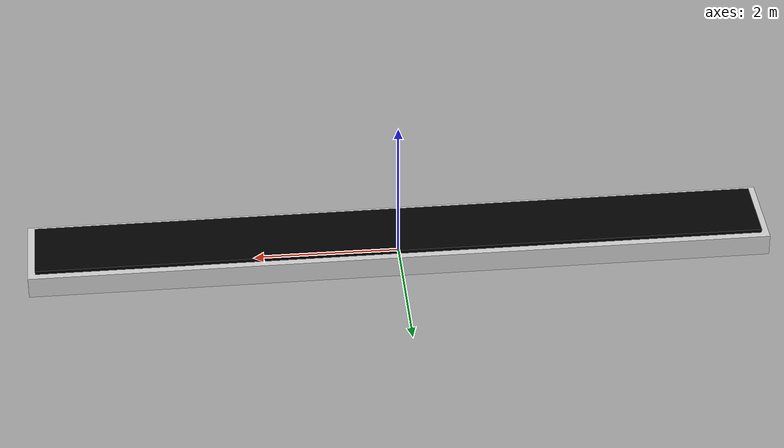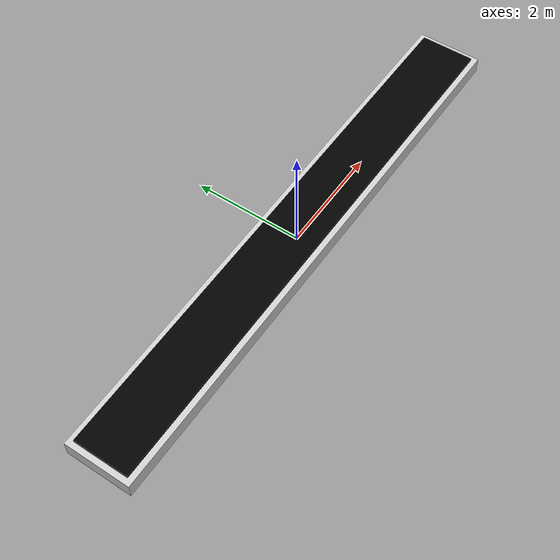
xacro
<?xml version="1.0"?>
<robot xmlns:xacro="http://ros.org/wiki/xacro" name="conveyor_belt">

  <xacro:macro name="conveyor_belt" params="prefix:=''">

    <!-- base_link link -->
    <link name="${prefix}base_link" />

    <!-- Fixed joint to belt_base -->
    <joint name="${prefix}fixed_to_base" type="fixed">
      <parent link="${prefix}base_link"/>
      <child link="${prefix}base"/>
    </joint>

    <!-- Belt Base (updated height to 0.3) -->
    <link name="${prefix}base">
      <collision>
        <origin xyz="0 0 0.15" rpy="0 0 0"/>
        <geometry>
          <box size="10.2 1.2 0.3"/>
        </geometry>
      </collision>
      <visual>
        <origin xyz="0 0 0.15" rpy="0 0 0"/>
        <geometry>
          <box size="10.2 1.2 0.3"/>
        </geometry>
        <material name="Silver">
          <color rgba="0.8 0.8 0.8 1.0"/>
        </material>
      </visual>
      <inertial>
        <origin xyz="0 0 0.15" rpy="0 0 0"/>
        <mass value="6"/> <!-- Increased due to size -->
        <inertia ixx="4.5" ixy="0.0" ixz="0.0" iyy="4.5" iyz="0.0" izz="4.5"/>
      </inertial>
    </link>

    <!-- Fixed joint to belt_surface -->
    <joint name="${prefix}fixed_surface" type="fixed">
      <parent link="${prefix}base"/>
      <child link="${prefix}surface"/>
    </joint>

    <!-- Belt Surface -->
    <link name="${prefix}surface">
      <collision>
        <origin xyz="0 0 0.25" rpy="0 0 0"/>
        <geometry>
          <box size="10 1 0.2"/>
        </geometry>
      </collision>
      <visual>
        <origin xyz="0 0 0.25" rpy="0 0 0"/>
        <geometry>
          <box size="10 1 0.2"/>
        </geometry>
        <material name="Black">
          <color rgba="0.0 0.0 0.0 1.0"/>
        </material>
      </visual>
      <inertial>
        <origin xyz="0 0 0.25" rpy="0 0 0"/>
        <mass value="1"/>
        <inertia ixx="1.0" ixy="0.0" ixz="0.0" iyy="1.0" iyz="0.0" izz="1.0"/>
      </inertial>
    </link>

    <gazebo reference="${prefix}surface">
      <mu1>0</mu1>
      <mu2>0</mu2>
      <material>Gazebo/FlatBlack</material>
    </gazebo>

    <gazebo reference="${prefix}base">
      <material>Gazebo/Silver</material>
    </gazebo>

    <gazebo>
      <static>true</static>
    </gazebo>

  </xacro:macro>

  <xacro:conveyor_belt prefix="belt_"/>
</robot>
